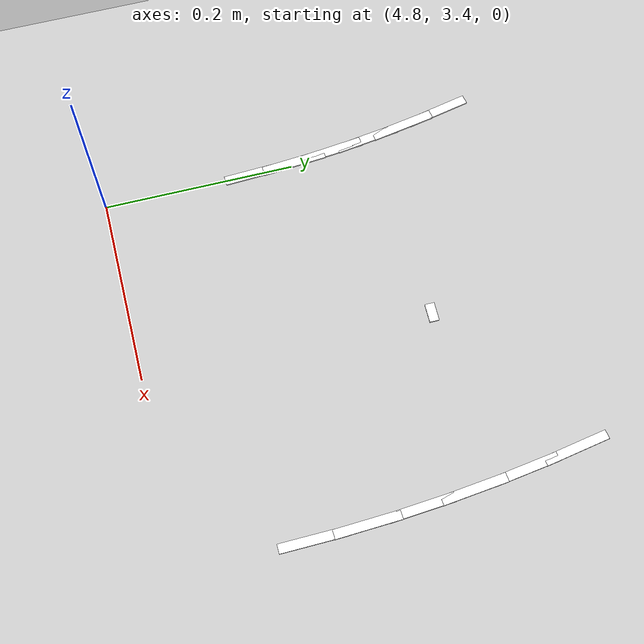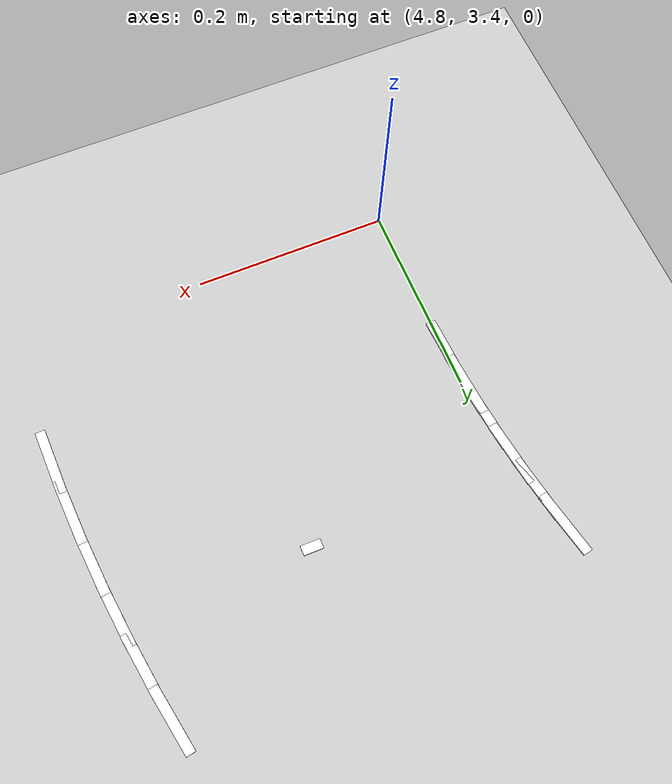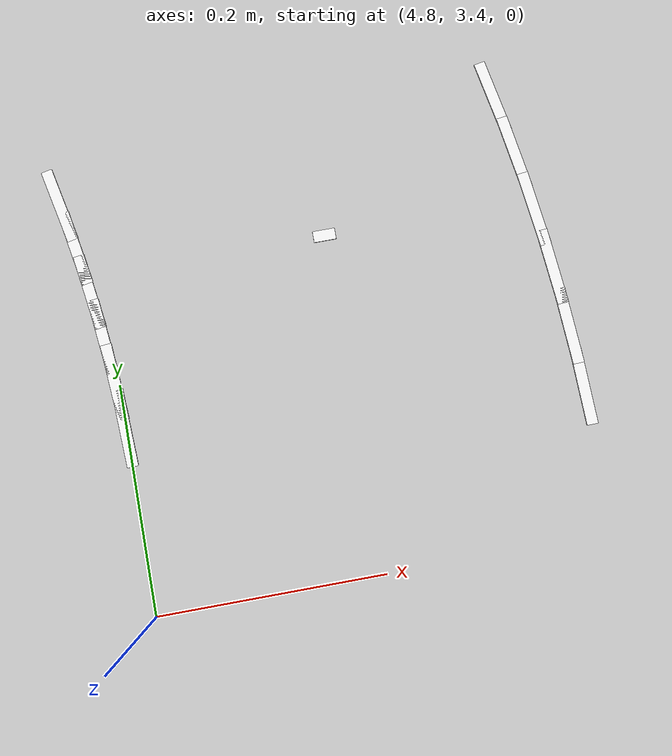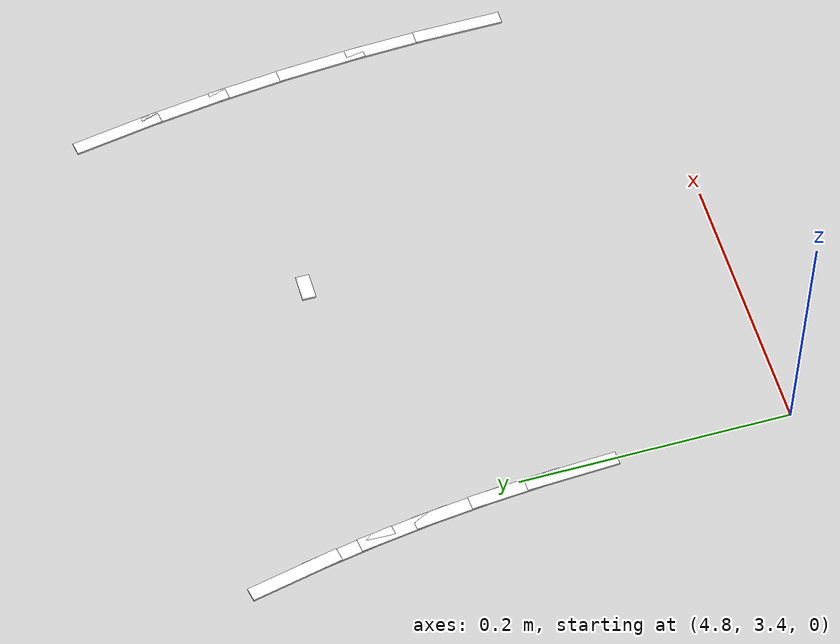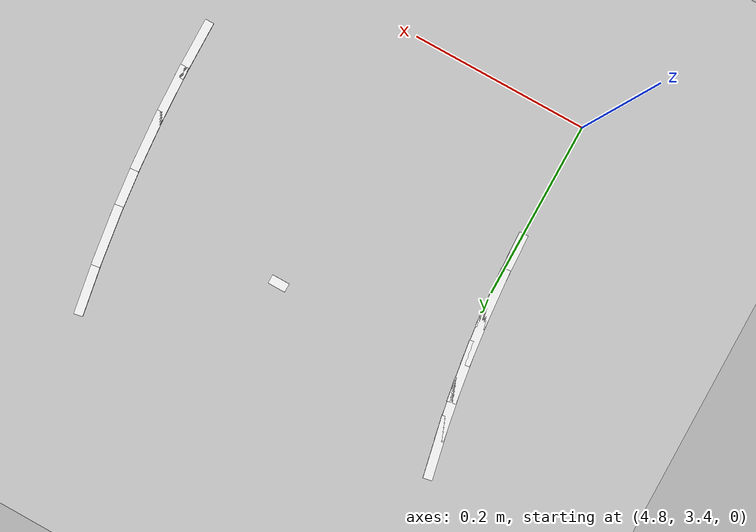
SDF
<sdf version="1.7">
 <world name="default">
  <model name="ground_plane">
   <static>1</static>
   <link name="link">
    <collision name="collision">
     <geometry><plane><normal>0 0 1</normal><size>100 100</size></plane></geometry>
     <surface>
      <contact><collide_bitmask>65535</collide_bitmask></contact>
      <friction><ode><mu>100</mu><mu2>50</mu2></ode></friction>
     </surface>
    </collision>
    <visual name="visual">
     <cast_shadows>0</cast_shadows>
     <geometry><plane><normal>0 0 1</normal><size>100 100</size></plane></geometry>
     <material>
      <script><uri>file://media/materials/scripts/gazebo.material</uri><name>Gazebo/Grey</name></script>
     </material>
    </visual>
   </link>
  </model>
  <model name="lane_line_left_149">
   <static>1</static>
   <link name="link">
    <pose>0 0 -0.004 0 -0 0</pose>
    <visual name="visual">
     <geometry><box><size>0.02 0.01 0.01</size></box></geometry>
     <material><ambient>1 1 1 1</ambient><diffuse>1 1 1 1</diffuse></material>
    </visual>
    <collision name="collision"><geometry><box><size>0.02 0.01 0.01</size></box></geometry></collision>
   </link>
   <pose>5 3.7 0 0 -0 0</pose>
  </model>
  <model name="lane_line_right_150">
   <static>1</static>
   <link name="link">
    <pose>0 0 -0.004 0 -0 0</pose>
    <visual name="visual">
     <geometry><box><size>0.0681 0.01 0.01</size></box></geometry>
     <material><ambient>1 1 1 1</ambient><diffuse>1 1 1 1</diffuse></material>
    </visual>
    <collision name="collision"><geometry><box><size>0.0681 0.01 0.01</size></box></geometry></collision>
   </link>
   <pose>5.19959 3.52724 0 0 -0 1.58682</pose>
  </model>
  <model name="lane_line_left_151">
   <static>1</static>
   <link name="link">
    <pose>0 0 -0.004 0 -0 0</pose>
    <visual name="visual">
     <geometry><box><size>0.0681 0.01 0.01</size></box></geometry>
     <material><ambient>1 1 1 1</ambient><diffuse>1 1 1 1</diffuse></material>
    </visual>
    <collision name="collision"><geometry><box><size>0.0681 0.01 0.01</size></box></geometry></collision>
   </link>
   <pose>4.7983 3.56248 0 0 -0 1.61888</pose>
  </model>
  <model name="lane_line_right_151">
   <static>1</static>
   <link name="link">
    <pose>0 0 -0.004 0 -0 0</pose>
    <visual name="visual">
     <geometry><box><size>0.0681 0.01 0.01</size></box></geometry>
     <material><ambient>1 1 1 1</ambient><diffuse>1 1 1 1</diffuse></material>
    </visual>
    <collision name="collision"><geometry><box><size>0.0681 0.01 0.01</size></box></geometry></collision>
   </link>
   <pose>5.19784 3.5817 0 0 -0 1.61888</pose>
  </model>
  <model name="lane_line_left_152">
   <static>1</static>
   <link name="link">
    <pose>0 0 -0.004 0 -0 0</pose>
    <visual name="visual">
     <geometry><box><size>0.0681 0.01 0.01</size></box></geometry>
     <material><ambient>1 1 1 1</ambient><diffuse>1 1 1 1</diffuse></material>
    </visual>
    <collision name="collision"><geometry><box><size>0.0681 0.01 0.01</size></box></geometry></collision>
   </link>
   <pose>4.79564 3.60406 0 0 -0 1.65094</pose>
  </model>
  <model name="lane_line_right_152">
   <static>1</static>
   <link name="link">
    <pose>0 0 -0.004 0 -0 0</pose>
    <visual name="visual">
     <geometry><box><size>0.0681 0.01 0.01</size></box></geometry>
     <material><ambient>1 1 1 1</ambient><diffuse>1 1 1 1</diffuse></material>
    </visual>
    <collision name="collision"><geometry><box><size>0.0681 0.01 0.01</size></box></geometry></collision>
   </link>
   <pose>5.19435 3.63608 0 0 -0 1.65094</pose>
  </model>
  <model name="lane_line_left_153">
   <static>1</static>
   <link name="link">
    <pose>0 0 -0.004 0 -0 0</pose>
    <visual name="visual">
     <geometry><box><size>0.0681 0.01 0.01</size></box></geometry>
     <material><ambient>1 1 1 1</ambient><diffuse>1 1 1 1</diffuse></material>
    </visual>
    <collision name="collision"><geometry><box><size>0.0681 0.01 0.01</size></box></geometry></collision>
   </link>
   <pose>4.79163 3.64553 0 0 -0 1.683</pose>
  </model>
  <model name="lane_line_right_153">
   <static>1</static>
   <link name="link">
    <pose>0 0 -0.004 0 -0 0</pose>
    <visual name="visual">
     <geometry><box><size>0.0681 0.01 0.01</size></box></geometry>
     <material><ambient>1 1 1 1</ambient><diffuse>1 1 1 1</diffuse></material>
    </visual>
    <collision name="collision"><geometry><box><size>0.0681 0.01 0.01</size></box></geometry></collision>
   </link>
   <pose>5.18912 3.69032 0 0 -0 1.683</pose>
  </model>
  <model name="lane_line_left_154">
   <static>1</static>
   <link name="link">
    <pose>0 0 -0.004 0 -0 0</pose>
    <visual name="visual">
     <geometry><box><size>0.0681 0.01 0.01</size></box></geometry>
     <material><ambient>1 1 1 1</ambient><diffuse>1 1 1 1</diffuse></material>
    </visual>
    <collision name="collision"><geometry><box><size>0.0681 0.01 0.01</size></box></geometry></collision>
   </link>
   <pose>4.78631 3.68686 0 0 -0 1.71505</pose>
  </model>
  <model name="lane_line_right_154">
   <static>1</static>
   <link name="link">
    <pose>0 0 -0.004 0 -0 0</pose>
    <visual name="visual">
     <geometry><box><size>0.0681 0.01 0.01</size></box></geometry>
     <material><ambient>1 1 1 1</ambient><diffuse>1 1 1 1</diffuse></material>
    </visual>
    <collision name="collision"><geometry><box><size>0.0681 0.01 0.01</size></box></geometry></collision>
   </link>
   <pose>5.18215 3.74436 0 0 -0 1.71505</pose>
  </model>
  <model name="lane_line_left_155">
   <static>1</static>
   <link name="link">
    <pose>0 0 -0.004 0 -0 0</pose>
    <visual name="visual">
     <geometry><box><size>0.0681 0.01 0.01</size></box></geometry>
     <material><ambient>1 1 1 1</ambient><diffuse>1 1 1 1</diffuse></material>
    </visual>
    <collision name="collision"><geometry><box><size>0.0681 0.01 0.01</size></box></geometry></collision>
   </link>
   <pose>4.77966 3.72799 0 0 -0 1.74711</pose>
  </model>
  <model name="lane_line_right_155">
   <static>1</static>
   <link name="link">
    <pose>0 0 -0.004 0 -0 0</pose>
    <visual name="visual">
     <geometry><box><size>0.0681 0.01 0.01</size></box></geometry>
     <material><ambient>1 1 1 1</ambient><diffuse>1 1 1 1</diffuse></material>
    </visual>
    <collision name="collision"><geometry><box><size>0.0681 0.01 0.01</size></box></geometry></collision>
   </link>
   <pose>5.17346 3.79815 0 0 -0 1.74711</pose>
  </model>
  <model name="lane_line_left_156">
   <static>1</static>
   <link name="link">
    <pose>0 0 -0.004 0 -0 0</pose>
    <visual name="visual">
     <geometry><box><size>0.0681 0.01 0.01</size></box></geometry>
     <material><ambient>1 1 1 1</ambient><diffuse>1 1 1 1</diffuse></material>
    </visual>
    <collision name="collision"><geometry><box><size>0.0681 0.01 0.01</size></box></geometry></collision>
   </link>
   <pose>4.77169 3.76889 0 0 -0 1.77917</pose>
  </model>
 </world>
</sdf>
